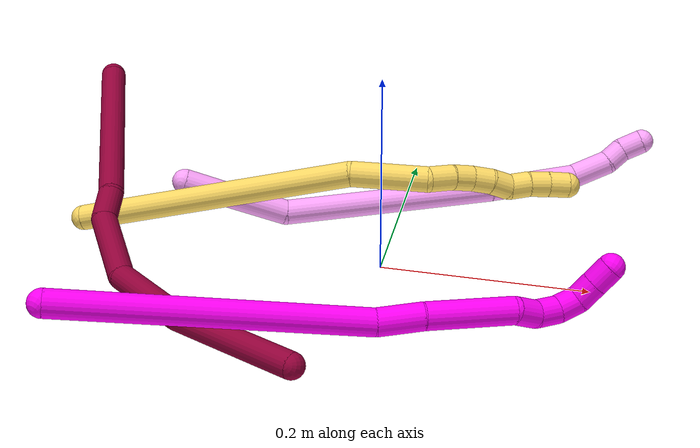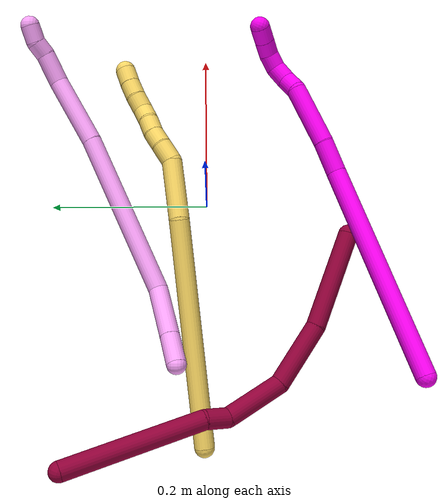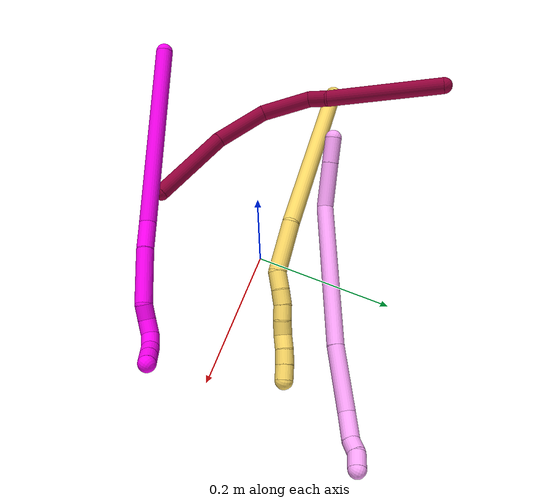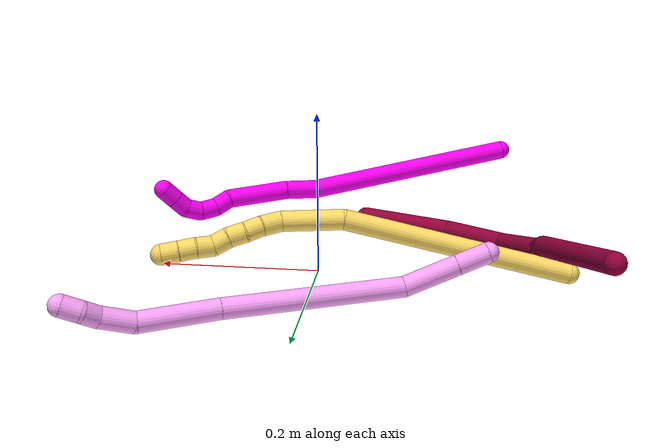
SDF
<sdf version="1.7">
 <world name="default">
  <model name="4">
   <static>0</static>
   <link name="4">
    <collision name="collision-cylinder-e_1_1_4">
     <pose>0.011128 0.014798 0.006122 -1.17851 0.607273 -0.412931</pose>
     <geometry><cylinder><radius>0.0125</radius><length>0.039002</length></cylinder></geometry>
     <surface>
      <friction><ode><mu>1.16</mu><mu2>1.16</mu2><slip1>0</slip1><slip2>0</slip2></ode></friction>
      <contact><ode><kp>1e+06</kp><kd>1</kd><max_vel>0</max_vel><min_depth>0.001</min_depth></ode></contact>
     </surface>
    </collision>
    <visual name="visual-cylinder-e_1_1_4">
     <pose>0.011128 0.014798 0.006122 -1.17851 0.607273 -0.412931</pose>
     <geometry><cylinder><radius>0.0125</radius><length>0.039002</length></cylinder></geometry>
     <material><ambient>1 0.65098 0.996078 1</ambient></material>
    </visual>
    <collision name="collision-cylinder-e_2_4_5">
     <pose>0.041824 0.0552 0.023265 -1.16437 0.612058 -0.410135</pose>
     <geometry><cylinder><radius>0.0125</radius><length>0.068116</length></cylinder></geometry>
     <surface>
      <friction><ode><mu>1.16</mu><mu2>1.16</mu2><slip1>0</slip1><slip2>0</slip2></ode></friction>
      <contact><ode><kp>1e+06</kp><kd>1</kd><max_vel>0</max_vel><min_depth>0.001</min_depth></ode></contact>
     </surface>
    </collision>
    <visual name="visual-cylinder-e_2_4_5">
     <pose>0.041824 0.0552 0.023265 -1.16437 0.612058 -0.410135</pose>
     <geometry><cylinder><radius>0.0125</radius><length>0.068116</length></cylinder></geometry>
     <material><ambient>1 0.65098 0.996078 1</ambient></material>
    </visual>
    <collision name="collision-cylinder-e_3_5_6">
     <pose>0.147588 0.127594 0.079671 -0.80062 0.923307 -0.414991</pose>
     <geometry><cylinder><radius>0.0125</radius><length>0.216139</length></cylinder></geometry>
     <surface>
      <friction><ode><mu>1.16</mu><mu2>1.16</mu2><slip1>0</slip1><slip2>0</slip2></ode></friction>
      <contact><ode><kp>1e+06</kp><kd>1</kd><max_vel>0</max_vel><min_depth>0.001</min_depth></ode></contact>
     </surface>
    </collision>
    <visual name="visual-cylinder-e_3_5_6">
     <pose>0.147588 0.127594 0.079671 -0.80062 0.923307 -0.414991</pose>
     <geometry><cylinder><radius>0.0125</radius><length>0.216139</length></cylinder></geometry>
     <material><ambient>1 0.65098 0.996078 1</ambient></material>
    </visual>
    <collision name="collision-cylinder-e_4_6_7">
     <pose>0.269852 0.193174 0.148321 -0.679424 0.878558 -0.329134</pose>
     <geometry><cylinder><radius>0.0125</radius><length>0.093706</length></cylinder></geometry>
     <surface>
      <friction><ode><mu>1.16</mu><mu2>1.16</mu2><slip1>0</slip1><slip2>0</slip2></ode></friction>
      <contact><ode><kp>1e+06</kp><kd>1</kd><max_vel>0</max_vel><min_depth>0.001</min_depth></ode></contact>
     </surface>
    </collision>
    <visual name="visual-cylinder-e_4_6_7">
     <pose>0.269852 0.193174 0.148321 -0.679424 0.878558 -0.329134</pose>
     <geometry><cylinder><radius>0.0125</radius><length>0.093706</length></cylinder></geometry>
     <material><ambient>1 0.65098 0.996078 1</ambient></material>
    </visual>
    <collision name="collision-cylinder-e_5_7_8">
     <pose>0.324367 0.21501 0.178976 -0.390892 1.16187 -0.258493</pose>
     <geometry><cylinder><radius>0.0125</radius><length>0.040208</length></cylinder></geometry>
     <surface>
      <friction><ode><mu>1.16</mu><mu2>1.16</mu2><slip1>0</slip1><slip2>0</slip2></ode></friction>
      <contact><ode><kp>1e+06</kp><kd>1</kd><max_vel>0</max_vel><min_depth>0.001</min_depth></ode></contact>
     </surface>
    </collision>
    <visual name="visual-cylinder-e_5_7_8">
     <pose>0.324367 0.21501 0.178976 -0.390892 1.16187 -0.258493</pose>
     <geometry><cylinder><radius>0.0125</radius><length>0.040208</length></cylinder></geometry>
     <material><ambient>1 0.65098 0.996078 1</ambient></material>
    </visual>
    <collision name="collision-cylinder-e_6_8_9">
     <pose>0.351664 0.216581 0.190995 0.308488 1.06884 0.18353</pose>
     <geometry><cylinder><radius>0.0125</radius><length>0.020191</length></cylinder></geometry>
     <surface>
      <friction><ode><mu>1.16</mu><mu2>1.16</mu2><slip1>0</slip1><slip2>0</slip2></ode></friction>
      <contact><ode><kp>1e+06</kp><kd>1</kd><max_vel>0</max_vel><min_depth>0.001</min_depth></ode></contact>
     </surface>
    </collision>
    <visual name="visual-cylinder-e_6_8_9">
     <pose>0.351664 0.216581 0.190995 0.308488 1.06884 0.18353</pose>
     <geometry><cylinder><radius>0.0125</radius><length>0.020191</length></cylinder></geometry>
     <material><ambient>1 0.65098 0.996078 1</ambient></material>
    </visual>
    <collision name="collision-cylinder-e_7_9_2">
     <pose>0.371488 0.216324 0.198118 -0.453995 1.323 -0.355836</pose>
     <geometry><cylinder><radius>0.0125</radius><length>0.022639</length></cylinder></geometry>
     <surface>
      <friction><ode><mu>1.16</mu><mu2>1.16</mu2><slip1>0</slip1><slip2>0</slip2></ode></friction>
      <contact><ode><kp>1e+06</kp><kd>1</kd><max_vel>0</max_vel><min_depth>0.001</min_depth></ode></contact>
     </surface>
    </collision>
    <visual name="visual-cylinder-e_7_9_2">
     <pose>0.371488 0.216324 0.198118 -0.453995 1.323 -0.355836</pose>
     <geometry><cylinder><radius>0.0125</radius><length>0.022639</length></cylinder></geometry>
     <material><ambient>1 0.65098 0.996078 1</ambient></material>
    </visual>
    <collision name="collision-sphere-2">
     <pose>0.382461 0.217541 0.200613 0 -0 0</pose>
     <geometry><sphere><radius>0.0125</radius></sphere></geometry>
     <surface>
      <friction><ode><mu>1.16</mu><mu2>1.16</mu2><slip1>0</slip1><slip2>0</slip2></ode></friction>
      <contact><ode><kp>1e+06</kp><kd>1</kd><max_vel>0</max_vel><min_depth>0.001</min_depth></ode></contact>
     </surface>
    </collision>
    <visual name="visual-sphere-2">
     <pose>0.382461 0.217541 0.200613 0 -0 0</pose>
     <geometry><sphere><radius>0.0125</radius></sphere></geometry>
     <material><ambient>1 0.65098 0.996078 1</ambient></material>
    </visual>
    <collision name="collision-sphere-9">
     <pose>0.360514 0.215106 0.195623 0 -0 0</pose>
     <geometry><sphere><radius>0.0125</radius></sphere></geometry>
     <surface>
      <friction><ode><mu>1.16</mu><mu2>1.16</mu2><slip1>0</slip1><slip2>0</slip2></ode></friction>
      <contact><ode><kp>1e+06</kp><kd>1</kd><max_vel>0</max_vel><min_depth>0.001</min_depth></ode></contact>
     </surface>
    </collision>
    <visual name="visual-sphere-9">
     <pose>0.360514 0.215106 0.195623 0 -0 0</pose>
     <geometry><sphere><radius>0.0125</radius></sphere></geometry>
     <material><ambient>1 0.65098 0.996078 1</ambient></material>
    </visual>
    <collision name="collision-sphere-4">
     <pose>0.022256 0.029596 0.012245 0 -0 0</pose>
     <geometry><sphere><radius>0.0125</radius></sphere></geometry>
     <surface>
      <friction><ode><mu>1.16</mu><mu2>1.16</mu2><slip1>0</slip1><slip2>0</slip2></ode></friction>
      <contact><ode><kp>1e+06</kp><kd>1</kd><max_vel>0</max_vel><min_depth>0.001</min_depth></ode></contact>
     </surface>
    </collision>
    <visual name="visual-sphere-4">
     <pose>0.022256 0.029596 0.012245 0 -0 0</pose>
     <geometry><sphere><radius>0.0125</radius></sphere></geometry>
     <material><ambient>1 0.65098 0.996078 1</ambient></material>
    </visual>
    <collision name="collision-sphere-1">
     <geometry><sphere><radius>0.0125</radius></sphere></geometry>
     <surface>
      <friction><ode><mu>1.16</mu><mu2>1.16</mu2><slip1>0</slip1><slip2>0</slip2></ode></friction>
      <contact><ode><kp>1e+06</kp><kd>1</kd><max_vel>0</max_vel><min_depth>0.001</min_depth></ode></contact>
     </surface>
    </collision>
    <visual name="visual-sphere-1">
     <geometry><sphere><radius>0.0125</radius></sphere></geometry>
     <material><ambient>1 0.65098 0.996078 1</ambient></material>
    </visual>
    <collision name="collision-sphere-8">
     <pose>0.342814 0.218056 0.186366 0 -0 0</pose>
     <geometry><sphere><radius>0.0125</radius></sphere></geometry>
     <surface>
      <friction><ode><mu>1.16</mu><mu2>1.16</mu2><slip1>0</slip1><slip2>0</slip2></ode></friction>
      <contact><ode><kp>1e+06</kp><kd>1</kd><max_vel>0</max_vel><min_depth>0.001</min_depth></ode></contact>
     </surface>
    </collision>
    <visual name="visual-sphere-8">
     <pose>0.342814 0.218056 0.186366 0 -0 0</pose>
     <geometry><sphere><radius>0.0125</radius></sphere></geometry>
     <material><ambient>1 0.65098 0.996078 1</ambient></material>
    </visual>
    <collision name="collision-sphere-5">
     <pose>0.061392 0.080805 0.034285 0 -0 0</pose>
     <geometry><sphere><radius>0.0125</radius></sphere></geometry>
     <surface>
      <friction><ode><mu>1.16</mu><mu2>1.16</mu2><slip1>0</slip1><slip2>0</slip2></ode></friction>
      <contact><ode><kp>1e+06</kp><kd>1</kd><max_vel>0</max_vel><min_depth>0.001</min_depth></ode></contact>
     </surface>
    </collision>
    <visual name="visual-sphere-5">
     <pose>0.061392 0.080805 0.034285 0 -0 0</pose>
     <geometry><sphere><radius>0.0125</radius></sphere></geometry>
     <material><ambient>1 0.65098 0.996078 1</ambient></material>
    </visual>
    <collision name="collision-sphere-6">
     <pose>0.233784 0.174384 0.125058 0 -0 0</pose>
     <geometry><sphere><radius>0.0125</radius></sphere></geometry>
     <surface>
      <friction><ode><mu>1.16</mu><mu2>1.16</mu2><slip1>0</slip1><slip2>0</slip2></ode></friction>
      <contact><ode><kp>1e+06</kp><kd>1</kd><max_vel>0</max_vel><min_depth>0.001</min_depth></ode></contact>
     </surface>
    </collision>
    <visual name="visual-sphere-6">
     <pose>0.233784 0.174384 0.125058 0 -0 0</pose>
     <geometry><sphere><radius>0.0125</radius></sphere></geometry>
     <material><ambient>1 0.65098 0.996078 1</ambient></material>
    </visual>
    <collision name="collision-sphere-7">
     <pose>0.305921 0.211964 0.171585 0 -0 0</pose>
     <geometry><sphere><radius>0.0125</radius></sphere></geometry>
     <surface>
      <friction><ode><mu>1.16</mu><mu2>1.16</mu2><slip1>0</slip1><slip2>0</slip2></ode></friction>
      <contact><ode><kp>1e+06</kp><kd>1</kd><max_vel>0</max_vel><min_depth>0.001</min_depth></ode></contact>
     </surface>
    </collision>
    <visual name="visual-sphere-7">
     <pose>0.305921 0.211964 0.171585 0 -0 0</pose>
     <geometry><sphere><radius>0.0125</radius></sphere></geometry>
     <material><ambient>1 0.65098 0.996078 1</ambient></material>
    </visual>
    <inertial>
     <pose>0.178043 0.135864 0.09696 0 -0 0</pose>
     <mass>0.5</mass>
     <inertia>
      <ixx>0.000339</ixx>
      <ixy>0</ixy>
      <ixz>0</ixz>
      <iyy>0.000616</iyy>
      <iyz>0</iyz>
      <izz>-0.001172</izz>
     </inertia>
    </inertial>
   </link>
   <pose>-0.20747 0.037132 0.04996 -1.81628 -0.584325 0.112607</pose>
  </model>
  <model name="5">
   <static>0</static>
   <link name="5">
    <collision name="collision-cylinder-e_1_1_4">
     <pose>0.113338 -0.011047 -0.079983 3.00434 0.951796 2.87644</pose>
     <geometry><cylinder><radius>0.0125</radius><length>0.278315</length></cylinder></geometry>
     <surface>
      <friction><ode><mu>1.16</mu><mu2>1.16</mu2><slip1>0</slip1><slip2>0</slip2></ode></friction>
      <contact><ode><kp>1e+06</kp><kd>1</kd><max_vel>0</max_vel><min_depth>0.001</min_depth></ode></contact>
     </surface>
    </collision>
    <visual name="visual-cylinder-e_1_1_4">
     <pose>0.113338 -0.011047 -0.079983 3.00434 0.951796 2.87644</pose>
     <geometry><cylinder><radius>0.0125</radius><length>0.278315</length></cylinder></geometry>
     <material><ambient>1 0.858824 0.4 1</ambient></material>
    </visual>
    <collision name="collision-cylinder-e_2_4_5">
     <pose>0.250293 -0.023473 -0.18887 3.09396 0.684515 3.00808</pose>
     <geometry><cylinder><radius>0.0125</radius><length>0.074702</length></cylinder></geometry>
     <surface>
      <friction><ode><mu>1.16</mu><mu2>1.16</mu2><slip1>0</slip1><slip2>0</slip2></ode></friction>
      <contact><ode><kp>1e+06</kp><kd>1</kd><max_vel>0</max_vel><min_depth>0.001</min_depth></ode></contact>
     </surface>
    </collision>
    <visual name="visual-cylinder-e_2_4_5">
     <pose>0.250293 -0.023473 -0.18887 3.09396 0.684515 3.00808</pose>
     <geometry><cylinder><radius>0.0125</radius><length>0.074702</length></cylinder></geometry>
     <material><ambient>1 0.858824 0.4 1</ambient></material>
    </visual>
    <collision name="collision-cylinder-e_3_5_6">
     <pose>0.281075 -0.019965 -0.227005 -2.65488 0.601259 -1.79111</pose>
     <geometry><cylinder><radius>0.0125</radius><length>0.025331</length></cylinder></geometry>
     <surface>
      <friction><ode><mu>1.16</mu><mu2>1.16</mu2><slip1>0</slip1><slip2>0</slip2></ode></friction>
      <contact><ode><kp>1e+06</kp><kd>1</kd><max_vel>0</max_vel><min_depth>0.001</min_depth></ode></contact>
     </surface>
    </collision>
    <visual name="visual-cylinder-e_3_5_6">
     <pose>0.281075 -0.019965 -0.227005 -2.65488 0.601259 -1.79111</pose>
     <geometry><cylinder><radius>0.0125</radius><length>0.025331</length></cylinder></geometry>
     <material><ambient>1 0.858824 0.4 1</ambient></material>
    </visual>
    <collision name="collision-cylinder-e_4_6_7">
     <pose>0.292875 -0.011284 -0.244458 -2.70904 0.473101 -1.66342</pose>
     <geometry><cylinder><radius>0.0125</radius><length>0.020347</length></cylinder></geometry>
     <surface>
      <friction><ode><mu>1.16</mu><mu2>1.16</mu2><slip1>0</slip1><slip2>0</slip2></ode></friction>
      <contact><ode><kp>1e+06</kp><kd>1</kd><max_vel>0</max_vel><min_depth>0.001</min_depth></ode></contact>
     </surface>
    </collision>
    <visual name="visual-cylinder-e_4_6_7">
     <pose>0.292875 -0.011284 -0.244458 -2.70904 0.473101 -1.66342</pose>
     <geometry><cylinder><radius>0.0125</radius><length>0.020347</length></cylinder></geometry>
     <material><ambient>1 0.858824 0.4 1</ambient></material>
    </visual>
    <collision name="collision-cylinder-e_5_7_8">
     <pose>0.30219 -0.005329 -0.261482 -2.90103 0.476641 -2.21827</pose>
     <geometry><cylinder><radius>0.0125</radius><length>0.0204</length></cylinder></geometry>
     <surface>
      <friction><ode><mu>1.16</mu><mu2>1.16</mu2><slip1>0</slip1><slip2>0</slip2></ode></friction>
      <contact><ode><kp>1e+06</kp><kd>1</kd><max_vel>0</max_vel><min_depth>0.001</min_depth></ode></contact>
     </surface>
    </collision>
    <visual name="visual-cylinder-e_5_7_8">
     <pose>0.30219 -0.005329 -0.261482 -2.90103 0.476641 -2.21827</pose>
     <geometry><cylinder><radius>0.0125</radius><length>0.0204</length></cylinder></geometry>
     <material><ambient>1 0.858824 0.4 1</ambient></material>
    </visual>
    <collision name="collision-cylinder-e_6_8_9">
     <pose>0.309715 -0.00041 -0.279589 -2.85326 0.285202 -1.55972</pose>
     <geometry><cylinder><radius>0.0125</radius><length>0.020228</length></cylinder></geometry>
     <surface>
      <friction><ode><mu>1.16</mu><mu2>1.16</mu2><slip1>0</slip1><slip2>0</slip2></ode></friction>
      <contact><ode><kp>1e+06</kp><kd>1</kd><max_vel>0</max_vel><min_depth>0.001</min_depth></ode></contact>
     </surface>
    </collision>
    <visual name="visual-cylinder-e_6_8_9">
     <pose>0.309715 -0.00041 -0.279589 -2.85326 0.285202 -1.55972</pose>
     <geometry><cylinder><radius>0.0125</radius><length>0.020228</length></cylinder></geometry>
     <material><ambient>1 0.858824 0.4 1</ambient></material>
    </visual>
    <collision name="collision-cylinder-e_7_9_10">
     <pose>0.319351 0.005513 -0.295912 -2.71818 0.722825 -2.10762</pose>
     <geometry><cylinder><radius>0.0125</radius><length>0.02053</length></cylinder></geometry>
     <surface>
      <friction><ode><mu>1.16</mu><mu2>1.16</mu2><slip1>0</slip1><slip2>0</slip2></ode></friction>
      <contact><ode><kp>1e+06</kp><kd>1</kd><max_vel>0</max_vel><min_depth>0.001</min_depth></ode></contact>
     </surface>
    </collision>
    <visual name="visual-cylinder-e_7_9_10">
     <pose>0.319351 0.005513 -0.295912 -2.71818 0.722825 -2.10762</pose>
     <geometry><cylinder><radius>0.0125</radius><length>0.02053</length></cylinder></geometry>
     <material><ambient>1 0.858824 0.4 1</ambient></material>
    </visual>
    <collision name="collision-cylinder-e_8_10_11">
     <pose>0.3319 0.011081 -0.31076 -2.84358 0.61277 -2.25545</pose>
     <geometry><cylinder><radius>0.0125</radius><length>0.020026</length></cylinder></geometry>
     <surface>
      <friction><ode><mu>1.16</mu><mu2>1.16</mu2><slip1>0</slip1><slip2>0</slip2></ode></friction>
      <contact><ode><kp>1e+06</kp><kd>1</kd><max_vel>0</max_vel><min_depth>0.001</min_depth></ode></contact>
     </surface>
    </collision>
    <visual name="visual-cylinder-e_8_10_11">
     <pose>0.3319 0.011081 -0.31076 -2.84358 0.61277 -2.25545</pose>
     <geometry><cylinder><radius>0.0125</radius><length>0.020026</length></cylinder></geometry>
     <material><ambient>1 0.858824 0.4 1</ambient></material>
    </visual>
    <collision name="collision-cylinder-e_9_11_2">
     <pose>0.343372 0.015235 -0.326685 -2.92884 0.603836 -2.48101</pose>
     <geometry><cylinder><radius>0.0125</radius><length>0.020122</length></cylinder></geometry>
     <surface>
      <friction><ode><mu>1.16</mu><mu2>1.16</mu2><slip1>0</slip1><slip2>0</slip2></ode></friction>
      <contact><ode><kp>1e+06</kp><kd>1</kd><max_vel>0</max_vel><min_depth>0.001</min_depth></ode></contact>
     </surface>
    </collision>
    <visual name="visual-cylinder-e_9_11_2">
     <pose>0.343372 0.015235 -0.326685 -2.92884 0.603836 -2.48101</pose>
     <geometry><cylinder><radius>0.0125</radius><length>0.020122</length></cylinder></geometry>
     <material><ambient>1 0.858824 0.4 1</ambient></material>
    </visual>
    <collision name="collision-sphere-2">
     <pose>0.349084 0.016983 -0.334781 0 -0 0</pose>
     <geometry><sphere><radius>0.0125</radius></sphere></geometry>
     <surface>
      <friction><ode><mu>1.16</mu><mu2>1.16</mu2><slip1>0</slip1><slip2>0</slip2></ode></friction>
      <contact><ode><kp>1e+06</kp><kd>1</kd><max_vel>0</max_vel><min_depth>0.001</min_depth></ode></contact>
     </surface>
    </collision>
    <visual name="visual-sphere-2">
     <pose>0.349084 0.016983 -0.334781 0 -0 0</pose>
     <geometry><sphere><radius>0.0125</radius></sphere></geometry>
     <material><ambient>1 0.858824 0.4 1</ambient></material>
    </visual>
    <collision name="collision-sphere-11">
     <pose>0.337659 0.013486 -0.31859 0 -0 0</pose>
     <geometry><sphere><radius>0.0125</radius></sphere></geometry>
     <surface>
      <friction><ode><mu>1.16</mu><mu2>1.16</mu2><slip1>0</slip1><slip2>0</slip2></ode></friction>
      <contact><ode><kp>1e+06</kp><kd>1</kd><max_vel>0</max_vel><min_depth>0.001</min_depth></ode></contact>
     </surface>
    </collision>
    <visual name="visual-sphere-11">
     <pose>0.337659 0.013486 -0.31859 0 -0 0</pose>
     <geometry><sphere><radius>0.0125</radius></sphere></geometry>
     <material><ambient>1 0.858824 0.4 1</ambient></material>
    </visual>
    <collision name="collision-sphere-10">
     <pose>0.326141 0.008676 -0.30293 0 -0 0</pose>
     <geometry><sphere><radius>0.0125</radius></sphere></geometry>
     <surface>
      <friction><ode><mu>1.16</mu><mu2>1.16</mu2><slip1>0</slip1><slip2>0</slip2></ode></friction>
      <contact><ode><kp>1e+06</kp><kd>1</kd><max_vel>0</max_vel><min_depth>0.001</min_depth></ode></contact>
     </surface>
    </collision>
    <visual name="visual-sphere-10">
     <pose>0.326141 0.008676 -0.30293 0 -0 0</pose>
     <geometry><sphere><radius>0.0125</radius></sphere></geometry>
     <material><ambient>1 0.858824 0.4 1</ambient></material>
    </visual>
    <collision name="collision-sphere-9">
     <pose>0.312561 0.00235 -0.288894 0 -0 0</pose>
     <geometry><sphere><radius>0.0125</radius></sphere></geometry>
     <surface>
      <friction><ode><mu>1.16</mu><mu2>1.16</mu2><slip1>0</slip1><slip2>0</slip2></ode></friction>
      <contact><ode><kp>1e+06</kp><kd>1</kd><max_vel>0</max_vel><min_depth>0.001</min_depth></ode></contact>
     </surface>
    </collision>
    <visual name="visual-sphere-9">
     <pose>0.312561 0.00235 -0.288894 0 -0 0</pose>
     <geometry><sphere><radius>0.0125</radius></sphere></geometry>
     <material><ambient>1 0.858824 0.4 1</ambient></material>
    </visual>
    <collision name="collision-sphere-4">
     <pose>0.226676 -0.022095 -0.159966 0 -0 0</pose>
     <geometry><sphere><radius>0.0125</radius></sphere></geometry>
     <surface>
      <friction><ode><mu>1.16</mu><mu2>1.16</mu2><slip1>0</slip1><slip2>0</slip2></ode></friction>
      <contact><ode><kp>1e+06</kp><kd>1</kd><max_vel>0</max_vel><min_depth>0.001</min_depth></ode></contact>
     </surface>
    </collision>
    <visual name="visual-sphere-4">
     <pose>0.226676 -0.022095 -0.159966 0 -0 0</pose>
     <geometry><sphere><radius>0.0125</radius></sphere></geometry>
     <material><ambient>1 0.858824 0.4 1</ambient></material>
    </visual>
    <collision name="collision-sphere-1">
     <geometry><sphere><radius>0.0125</radius></sphere></geometry>
     <surface>
      <friction><ode><mu>1.16</mu><mu2>1.16</mu2><slip1>0</slip1><slip2>0</slip2></ode></friction>
      <contact><ode><kp>1e+06</kp><kd>1</kd><max_vel>0</max_vel><min_depth>0.001</min_depth></ode></contact>
     </surface>
    </collision>
    <visual name="visual-sphere-1">
     <geometry><sphere><radius>0.0125</radius></sphere></geometry>
     <material><ambient>1 0.858824 0.4 1</ambient></material>
    </visual>
    <collision name="collision-sphere-8">
     <pose>0.30687 -0.00317 -0.270284 0 -0 0</pose>
     <geometry><sphere><radius>0.0125</radius></sphere></geometry>
     <surface>
      <friction><ode><mu>1.16</mu><mu2>1.16</mu2><slip1>0</slip1><slip2>0</slip2></ode></friction>
      <contact><ode><kp>1e+06</kp><kd>1</kd><max_vel>0</max_vel><min_depth>0.001</min_depth></ode></contact>
     </surface>
    </collision>
    <visual name="visual-sphere-8">
     <pose>0.30687 -0.00317 -0.270284 0 -0 0</pose>
     <geometry><sphere><radius>0.0125</radius></sphere></geometry>
     <material><ambient>1 0.858824 0.4 1</ambient></material>
    </visual>
    <collision name="collision-sphere-5">
     <pose>0.27391 -0.02485 -0.217774 0 -0 0</pose>
     <geometry><sphere><radius>0.0125</radius></sphere></geometry>
     <surface>
      <friction><ode><mu>1.16</mu><mu2>1.16</mu2><slip1>0</slip1><slip2>0</slip2></ode></friction>
      <contact><ode><kp>1e+06</kp><kd>1</kd><max_vel>0</max_vel><min_depth>0.001</min_depth></ode></contact>
     </surface>
    </collision>
    <visual name="visual-sphere-5">
     <pose>0.27391 -0.02485 -0.217774 0 -0 0</pose>
     <geometry><sphere><radius>0.0125</radius></sphere></geometry>
     <material><ambient>1 0.858824 0.4 1</ambient></material>
    </visual>
    <collision name="collision-sphere-6">
     <pose>0.288239 -0.01508 -0.236236 0 -0 0</pose>
     <geometry><sphere><radius>0.0125</radius></sphere></geometry>
     <surface>
      <friction><ode><mu>1.16</mu><mu2>1.16</mu2><slip1>0</slip1><slip2>0</slip2></ode></friction>
      <contact><ode><kp>1e+06</kp><kd>1</kd><max_vel>0</max_vel><min_depth>0.001</min_depth></ode></contact>
     </surface>
    </collision>
    <visual name="visual-sphere-6">
     <pose>0.288239 -0.01508 -0.236236 0 -0 0</pose>
     <geometry><sphere><radius>0.0125</radius></sphere></geometry>
     <material><ambient>1 0.858824 0.4 1</ambient></material>
    </visual>
    <collision name="collision-sphere-7">
     <pose>0.29751 -0.007488 -0.25268 0 -0 0</pose>
     <geometry><sphere><radius>0.0125</radius></sphere></geometry>
     <surface>
      <friction><ode><mu>1.16</mu><mu2>1.16</mu2><slip1>0</slip1><slip2>0</slip2></ode></friction>
      <contact><ode><kp>1e+06</kp><kd>1</kd><max_vel>0</max_vel><min_depth>0.001</min_depth></ode></contact>
     </surface>
    </collision>
    <visual name="visual-sphere-7">
     <pose>0.29751 -0.007488 -0.25268 0 -0 0</pose>
     <geometry><sphere><radius>0.0125</radius></sphere></geometry>
     <material><ambient>1 0.858824 0.4 1</ambient></material>
    </visual>
    <inertial>
     <pose>0.191723 -0.010078 -0.15391 0 -0 0</pose>
     <mass>0.5</mass>
     <inertia>
      <ixx>-0.000747</ixx>
      <ixy>0</ixy>
      <ixz>0</ixz>
      <iyy>0.002096</iyy>
      <iyz>0</iyz>
      <izz>-0.001386</izz>
     </inertia>
    </inertial>
   </link>
   <pose>-0.305313 0.004374 0.014596 -0.160852 -0.844398 0.281311</pose>
  </model>
  <model name="8">
   <static>0</static>
   <link name="8">
    <collision name="collision-cylinder-e_1_1_4">
     <pose>0.034028 -0.072533 0.03961 1.07096 0.39059 0.23366</pose>
     <geometry><cylinder><radius>0.0125</radius><length>0.17875</length></cylinder></geometry>
     <surface>
      <friction><ode><mu>1.16</mu><mu2>1.16</mu2><slip1>0</slip1><slip2>0</slip2></ode></friction>
      <contact><ode><kp>1e+06</kp><kd>1</kd><max_vel>0</max_vel><min_depth>0.001</min_depth></ode></contact>
     </surface>
    </collision>
    <visual name="visual-cylinder-e_1_1_4">
     <pose>0.034028 -0.072533 0.03961 1.07096 0.39059 0.23366</pose>
     <geometry><cylinder><radius>0.0125</radius><length>0.17875</length></cylinder></geometry>
     <material><ambient>0.584314 0 0.227451 1</ambient></material>
    </visual>
    <collision name="collision-cylinder-e_2_4_5">
     <pose>0.069528 -0.159246 0.085577 1.14934 0.094449 0.061189</pose>
     <geometry><cylinder><radius>0.0125</radius><length>0.031218</length></cylinder></geometry>
     <surface>
      <friction><ode><mu>1.16</mu><mu2>1.16</mu2><slip1>0</slip1><slip2>0</slip2></ode></friction>
      <contact><ode><kp>1e+06</kp><kd>1</kd><max_vel>0</max_vel><min_depth>0.001</min_depth></ode></contact>
     </surface>
    </collision>
    <visual name="visual-cylinder-e_2_4_5">
     <pose>0.069528 -0.159246 0.085577 1.14934 0.094449 0.061189</pose>
     <geometry><cylinder><radius>0.0125</radius><length>0.031218</length></cylinder></geometry>
     <material><ambient>0.584314 0 0.227451 1</ambient></material>
    </visual>
    <collision name="collision-cylinder-e_3_5_6">
     <pose>0.093059 -0.203486 0.104442 1.17648 0.595472 0.403779</pose>
     <geometry><cylinder><radius>0.0125</radius><length>0.078656</length></cylinder></geometry>
     <surface>
      <friction><ode><mu>1.16</mu><mu2>1.16</mu2><slip1>0</slip1><slip2>0</slip2></ode></friction>
      <contact><ode><kp>1e+06</kp><kd>1</kd><max_vel>0</max_vel><min_depth>0.001</min_depth></ode></contact>
     </surface>
    </collision>
    <visual name="visual-cylinder-e_3_5_6">
     <pose>0.093059 -0.203486 0.104442 1.17648 0.595472 0.403779</pose>
     <geometry><cylinder><radius>0.0125</radius><length>0.078656</length></cylinder></geometry>
     <material><ambient>0.584314 0 0.227451 1</ambient></material>
    </visual>
    <collision name="collision-cylinder-e_4_6_7">
     <pose>0.152072 -0.253836 0.122565 1.30081 1.05297 0.832706</pose>
     <geometry><cylinder><radius>0.0125</radius><length>0.085059</length></cylinder></geometry>
     <surface>
      <friction><ode><mu>1.16</mu><mu2>1.16</mu2><slip1>0</slip1><slip2>0</slip2></ode></friction>
      <contact><ode><kp>1e+06</kp><kd>1</kd><max_vel>0</max_vel><min_depth>0.001</min_depth></ode></contact>
     </surface>
    </collision>
    <visual name="visual-cylinder-e_4_6_7">
     <pose>0.152072 -0.253836 0.122565 1.30081 1.05297 0.832706</pose>
     <geometry><cylinder><radius>0.0125</radius><length>0.085059</length></cylinder></geometry>
     <material><ambient>0.584314 0 0.227451 1</ambient></material>
    </visual>
    <collision name="collision-cylinder-e_5_7_2">
     <pose>0.248186 -0.296121 0.12589 1.67452 1.21307 1.31203</pose>
     <geometry><cylinder><radius>0.0125</radius><length>0.126317</length></cylinder></geometry>
     <surface>
      <friction><ode><mu>1.16</mu><mu2>1.16</mu2><slip1>0</slip1><slip2>0</slip2></ode></friction>
      <contact><ode><kp>1e+06</kp><kd>1</kd><max_vel>0</max_vel><min_depth>0.001</min_depth></ode></contact>
     </surface>
    </collision>
    <visual name="visual-cylinder-e_5_7_2">
     <pose>0.248186 -0.296121 0.12589 1.67452 1.21307 1.31203</pose>
     <geometry><cylinder><radius>0.0125</radius><length>0.126317</length></cylinder></geometry>
     <material><ambient>0.584314 0 0.227451 1</ambient></material>
    </visual>
    <collision name="collision-sphere-2">
     <pose>0.307346 -0.318117 0.123601 0 -0 0</pose>
     <geometry><sphere><radius>0.0125</radius></sphere></geometry>
     <surface>
      <friction><ode><mu>1.16</mu><mu2>1.16</mu2><slip1>0</slip1><slip2>0</slip2></ode></friction>
      <contact><ode><kp>1e+06</kp><kd>1</kd><max_vel>0</max_vel><min_depth>0.001</min_depth></ode></contact>
     </surface>
    </collision>
    <visual name="visual-sphere-2">
     <pose>0.307346 -0.318117 0.123601 0 -0 0</pose>
     <geometry><sphere><radius>0.0125</radius></sphere></geometry>
     <material><ambient>0.584314 0 0.227451 1</ambient></material>
    </visual>
    <collision name="collision-sphere-7">
     <pose>0.189026 -0.274125 0.12818 0 -0 0</pose>
     <geometry><sphere><radius>0.0125</radius></sphere></geometry>
     <surface>
      <friction><ode><mu>1.16</mu><mu2>1.16</mu2><slip1>0</slip1><slip2>0</slip2></ode></friction>
      <contact><ode><kp>1e+06</kp><kd>1</kd><max_vel>0</max_vel><min_depth>0.001</min_depth></ode></contact>
     </surface>
    </collision>
    <visual name="visual-sphere-7">
     <pose>0.189026 -0.274125 0.12818 0 -0 0</pose>
     <geometry><sphere><radius>0.0125</radius></sphere></geometry>
     <material><ambient>0.584314 0 0.227451 1</ambient></material>
    </visual>
    <collision name="collision-sphere-6">
     <pose>0.115118 -0.233546 0.11695 0 -0 0</pose>
     <geometry><sphere><radius>0.0125</radius></sphere></geometry>
     <surface>
      <friction><ode><mu>1.16</mu><mu2>1.16</mu2><slip1>0</slip1><slip2>0</slip2></ode></friction>
      <contact><ode><kp>1e+06</kp><kd>1</kd><max_vel>0</max_vel><min_depth>0.001</min_depth></ode></contact>
     </surface>
    </collision>
    <visual name="visual-sphere-6">
     <pose>0.115118 -0.233546 0.11695 0 -0 0</pose>
     <geometry><sphere><radius>0.0125</radius></sphere></geometry>
     <material><ambient>0.584314 0 0.227451 1</ambient></material>
    </visual>
    <collision name="collision-sphere-5">
     <pose>0.071 -0.173426 0.091934 0 -0 0</pose>
     <geometry><sphere><radius>0.0125</radius></sphere></geometry>
     <surface>
      <friction><ode><mu>1.16</mu><mu2>1.16</mu2><slip1>0</slip1><slip2>0</slip2></ode></friction>
      <contact><ode><kp>1e+06</kp><kd>1</kd><max_vel>0</max_vel><min_depth>0.001</min_depth></ode></contact>
     </surface>
    </collision>
    <visual name="visual-sphere-5">
     <pose>0.071 -0.173426 0.091934 0 -0 0</pose>
     <geometry><sphere><radius>0.0125</radius></sphere></geometry>
     <material><ambient>0.584314 0 0.227451 1</ambient></material>
    </visual>
    <collision name="collision-sphere-1">
     <geometry><sphere><radius>0.0125</radius></sphere></geometry>
     <surface>
      <friction><ode><mu>1.16</mu><mu2>1.16</mu2><slip1>0</slip1><slip2>0</slip2></ode></friction>
      <contact><ode><kp>1e+06</kp><kd>1</kd><max_vel>0</max_vel><min_depth>0.001</min_depth></ode></contact>
     </surface>
    </collision>
    <visual name="visual-sphere-1">
     <geometry><sphere><radius>0.0125</radius></sphere></geometry>
     <material><ambient>0.584314 0 0.227451 1</ambient></material>
    </visual>
    <collision name="collision-sphere-4">
     <pose>0.068056 -0.145066 0.07922 0 -0 0</pose>
     <geometry><sphere><radius>0.0125</radius></sphere></geometry>
     <surface>
      <friction><ode><mu>1.16</mu><mu2>1.16</mu2><slip1>0</slip1><slip2>0</slip2></ode></friction>
      <contact><ode><kp>1e+06</kp><kd>1</kd><max_vel>0</max_vel><min_depth>0.001</min_depth></ode></contact>
     </surface>
    </collision>
    <visual name="visual-sphere-4">
     <pose>0.068056 -0.145066 0.07922 0 -0 0</pose>
     <geometry><sphere><radius>0.0125</radius></sphere></geometry>
     <material><ambient>0.584314 0 0.227451 1</ambient></material>
    </visual>
    <inertial>
     <pose>0.119716 -0.185876 0.088588 0 -0 0</pose>
     <mass>0.5</mass>
     <inertia>
      <ixx>0.000725</ixx>
      <ixy>0</ixy>
      <ixz>0</ixz>
      <iyy>0.000655</iyy>
      <iyz>0</iyz>
      <izz>0.000107</izz>
     </inertia>
    </inertial>
   </link>
   <pose>-0.328832 0.167021 0.094682 0.938494 -0.303864 -0.189564</pose>
  </model>
  <model name="10">
   <static>0</static>
   <link name="10">
    <collision name="collision-cylinder-e_1_1_4">
     <pose>0.106639 0.042695 0.074054 -0.522995 0.895092 -0.255538</pose>
     <geometry><cylinder><radius>0.0125</radius><length>0.27334</length></cylinder></geometry>
     <surface>
      <friction><ode><mu>1.16</mu><mu2>1.16</mu2><slip1>0</slip1><slip2>0</slip2></ode></friction>
      <contact><ode><kp>1e+06</kp><kd>1</kd><max_vel>0</max_vel><min_depth>0.001</min_depth></ode></contact>
     </surface>
    </collision>
    <visual name="visual-cylinder-e_1_1_4">
     <pose>0.106639 0.042695 0.074054 -0.522995 0.895092 -0.255538</pose>
     <geometry><cylinder><radius>0.0125</radius><length>0.27334</length></cylinder></geometry>
     <material><ambient>1 0 0.964706 1</ambient></material>
    </visual>
    <collision name="collision-cylinder-e_2_4_5">
     <pose>0.2292 0.088132 0.161172 -0.206846 0.873058 -0.096773</pose>
     <geometry><cylinder><radius>0.0125</radius><length>0.041556</length></cylinder></geometry>
     <surface>
      <friction><ode><mu>1.16</mu><mu2>1.16</mu2><slip1>0</slip1><slip2>0</slip2></ode></friction>
      <contact><ode><kp>1e+06</kp><kd>1</kd><max_vel>0</max_vel><min_depth>0.001</min_depth></ode></contact>
     </surface>
    </collision>
    <visual name="visual-cylinder-e_2_4_5">
     <pose>0.2292 0.088132 0.161172 -0.206846 0.873058 -0.096773</pose>
     <geometry><cylinder><radius>0.0125</radius><length>0.041556</length></cylinder></geometry>
     <material><ambient>1 0 0.964706 1</ambient></material>
    </visual>
    <collision name="collision-cylinder-e_3_5_6">
     <pose>0.274361 0.100754 0.199419 -0.373908 0.824252 -0.165014</pose>
     <geometry><cylinder><radius>0.0125</radius><length>0.079666</length></cylinder></geometry>
     <surface>
      <friction><ode><mu>1.16</mu><mu2>1.16</mu2><slip1>0</slip1><slip2>0</slip2></ode></friction>
      <contact><ode><kp>1e+06</kp><kd>1</kd><max_vel>0</max_vel><min_depth>0.001</min_depth></ode></contact>
     </surface>
    </collision>
    <visual name="visual-cylinder-e_3_5_6">
     <pose>0.274361 0.100754 0.199419 -0.373908 0.824252 -0.165014</pose>
     <geometry><cylinder><radius>0.0125</radius><length>0.079666</length></cylinder></geometry>
     <material><ambient>1 0 0.964706 1</ambient></material>
    </visual>
    <collision name="collision-cylinder-e_4_6_7">
     <pose>0.309717 0.117362 0.231169 -0.797296 0.576792 -0.248624</pose>
     <geometry><cylinder><radius>0.0125</radius><length>0.022435</length></cylinder></geometry>
     <surface>
      <friction><ode><mu>1.16</mu><mu2>1.16</mu2><slip1>0</slip1><slip2>0</slip2></ode></friction>
      <contact><ode><kp>1e+06</kp><kd>1</kd><max_vel>0</max_vel><min_depth>0.001</min_depth></ode></contact>
     </surface>
    </collision>
    <visual name="visual-cylinder-e_4_6_7">
     <pose>0.309717 0.117362 0.231169 -0.797296 0.576792 -0.248624</pose>
     <geometry><cylinder><radius>0.0125</radius><length>0.022435</length></cylinder></geometry>
     <material><ambient>1 0 0.964706 1</ambient></material>
    </visual>
    <collision name="collision-cylinder-e_5_7_8">
     <pose>0.322066 0.127489 0.246427 -0.372932 0.588865 -0.114295</pose>
     <geometry><cylinder><radius>0.0125</radius><length>0.022438</length></cylinder></geometry>
     <surface>
      <friction><ode><mu>1.16</mu><mu2>1.16</mu2><slip1>0</slip1><slip2>0</slip2></ode></friction>
      <contact><ode><kp>1e+06</kp><kd>1</kd><max_vel>0</max_vel><min_depth>0.001</min_depth></ode></contact>
     </surface>
    </collision>
    <visual name="visual-cylinder-e_5_7_8">
     <pose>0.322066 0.127489 0.246427 -0.372932 0.588865 -0.114295</pose>
     <geometry><cylinder><radius>0.0125</radius><length>0.022438</length></cylinder></geometry>
     <material><ambient>1 0 0.964706 1</ambient></material>
    </visual>
    <collision name="collision-cylinder-e_6_8_9">
     <pose>0.33469 0.129472 0.262944 0.17892 0.676877 0.063124</pose>
     <geometry><cylinder><radius>0.0125</radius><length>0.020412</length></cylinder></geometry>
     <surface>
      <friction><ode><mu>1.16</mu><mu2>1.16</mu2><slip1>0</slip1><slip2>0</slip2></ode></friction>
      <contact><ode><kp>1e+06</kp><kd>1</kd><max_vel>0</max_vel><min_depth>0.001</min_depth></ode></contact>
     </surface>
    </collision>
    <visual name="visual-cylinder-e_6_8_9">
     <pose>0.33469 0.129472 0.262944 0.17892 0.676877 0.063124</pose>
     <geometry><cylinder><radius>0.0125</radius><length>0.020412</length></cylinder></geometry>
     <material><ambient>1 0 0.964706 1</ambient></material>
    </visual>
    <collision name="collision-cylinder-e_7_9_10">
     <pose>0.346021 0.122437 0.277474 0.697759 0.514064 0.190646</pose>
     <geometry><cylinder><radius>0.0125</radius><length>0.020087</length></cylinder></geometry>
     <surface>
      <friction><ode><mu>1.16</mu><mu2>1.16</mu2><slip1>0</slip1><slip2>0</slip2></ode></friction>
      <contact><ode><kp>1e+06</kp><kd>1</kd><max_vel>0</max_vel><min_depth>0.001</min_depth></ode></contact>
     </surface>
    </collision>
    <visual name="visual-cylinder-e_7_9_10">
     <pose>0.346021 0.122437 0.277474 0.697759 0.514064 0.190646</pose>
     <geometry><cylinder><radius>0.0125</radius><length>0.020087</length></cylinder></geometry>
     <material><ambient>1 0 0.964706 1</ambient></material>
    </visual>
    <collision name="collision-cylinder-e_8_10_2">
     <pose>0.35589 0.111204 0.290872 0.697774 0.513734 0.190523</pose>
     <geometry><cylinder><radius>0.0125</radius><length>0.020066</length></cylinder></geometry>
     <surface>
      <friction><ode><mu>1.16</mu><mu2>1.16</mu2><slip1>0</slip1><slip2>0</slip2></ode></friction>
      <contact><ode><kp>1e+06</kp><kd>1</kd><max_vel>0</max_vel><min_depth>0.001</min_depth></ode></contact>
     </surface>
    </collision>
    <visual name="visual-cylinder-e_8_10_2">
     <pose>0.35589 0.111204 0.290872 0.697774 0.513734 0.190523</pose>
     <geometry><cylinder><radius>0.0125</radius><length>0.020066</length></cylinder></geometry>
     <material><ambient>1 0 0.964706 1</ambient></material>
    </visual>
    <collision name="collision-sphere-2">
     <pose>0.360821 0.10559 0.297567 0 -0 0</pose>
     <geometry><sphere><radius>0.0125</radius></sphere></geometry>
     <surface>
      <friction><ode><mu>1.16</mu><mu2>1.16</mu2><slip1>0</slip1><slip2>0</slip2></ode></friction>
      <contact><ode><kp>1e+06</kp><kd>1</kd><max_vel>0</max_vel><min_depth>0.001</min_depth></ode></contact>
     </surface>
    </collision>
    <visual name="visual-sphere-2">
     <pose>0.360821 0.10559 0.297567 0 -0 0</pose>
     <geometry><sphere><radius>0.0125</radius></sphere></geometry>
     <material><ambient>1 0 0.964706 1</ambient></material>
    </visual>
    <collision name="collision-sphere-10">
     <pose>0.35096 0.116818 0.284176 0 -0 0</pose>
     <geometry><sphere><radius>0.0125</radius></sphere></geometry>
     <surface>
      <friction><ode><mu>1.16</mu><mu2>1.16</mu2><slip1>0</slip1><slip2>0</slip2></ode></friction>
      <contact><ode><kp>1e+06</kp><kd>1</kd><max_vel>0</max_vel><min_depth>0.001</min_depth></ode></contact>
     </surface>
    </collision>
    <visual name="visual-sphere-10">
     <pose>0.35096 0.116818 0.284176 0 -0 0</pose>
     <geometry><sphere><radius>0.0125</radius></sphere></geometry>
     <material><ambient>1 0 0.964706 1</ambient></material>
    </visual>
    <collision name="collision-sphere-9">
     <pose>0.341083 0.128056 0.270773 0 -0 0</pose>
     <geometry><sphere><radius>0.0125</radius></sphere></geometry>
     <surface>
      <friction><ode><mu>1.16</mu><mu2>1.16</mu2><slip1>0</slip1><slip2>0</slip2></ode></friction>
      <contact><ode><kp>1e+06</kp><kd>1</kd><max_vel>0</max_vel><min_depth>0.001</min_depth></ode></contact>
     </surface>
    </collision>
    <visual name="visual-sphere-9">
     <pose>0.341083 0.128056 0.270773 0 -0 0</pose>
     <geometry><sphere><radius>0.0125</radius></sphere></geometry>
     <material><ambient>1 0 0.964706 1</ambient></material>
    </visual>
    <collision name="collision-sphere-4">
     <pose>0.213278 0.08539 0.148107 0 -0 0</pose>
     <geometry><sphere><radius>0.0125</radius></sphere></geometry>
     <surface>
      <friction><ode><mu>1.16</mu><mu2>1.16</mu2><slip1>0</slip1><slip2>0</slip2></ode></friction>
      <contact><ode><kp>1e+06</kp><kd>1</kd><max_vel>0</max_vel><min_depth>0.001</min_depth></ode></contact>
     </surface>
    </collision>
    <visual name="visual-sphere-4">
     <pose>0.213278 0.08539 0.148107 0 -0 0</pose>
     <geometry><sphere><radius>0.0125</radius></sphere></geometry>
     <material><ambient>1 0 0.964706 1</ambient></material>
    </visual>
    <collision name="collision-sphere-1">
     <geometry><sphere><radius>0.0125</radius></sphere></geometry>
     <surface>
      <friction><ode><mu>1.16</mu><mu2>1.16</mu2><slip1>0</slip1><slip2>0</slip2></ode></friction>
      <contact><ode><kp>1e+06</kp><kd>1</kd><max_vel>0</max_vel><min_depth>0.001</min_depth></ode></contact>
     </surface>
    </collision>
    <visual name="visual-sphere-1">
     <geometry><sphere><radius>0.0125</radius></sphere></geometry>
     <material><ambient>1 0 0.964706 1</ambient></material>
    </visual>
    <collision name="collision-sphere-8">
     <pose>0.328297 0.130888 0.255115 0 -0 0</pose>
     <geometry><sphere><radius>0.0125</radius></sphere></geometry>
     <surface>
      <friction><ode><mu>1.16</mu><mu2>1.16</mu2><slip1>0</slip1><slip2>0</slip2></ode></friction>
      <contact><ode><kp>1e+06</kp><kd>1</kd><max_vel>0</max_vel><min_depth>0.001</min_depth></ode></contact>
     </surface>
    </collision>
    <visual name="visual-sphere-8">
     <pose>0.328297 0.130888 0.255115 0 -0 0</pose>
     <geometry><sphere><radius>0.0125</radius></sphere></geometry>
     <material><ambient>1 0 0.964706 1</ambient></material>
    </visual>
    <collision name="collision-sphere-5">
     <pose>0.245122 0.090874 0.174237 0 -0 0</pose>
     <geometry><sphere><radius>0.0125</radius></sphere></geometry>
     <surface>
      <friction><ode><mu>1.16</mu><mu2>1.16</mu2><slip1>0</slip1><slip2>0</slip2></ode></friction>
      <contact><ode><kp>1e+06</kp><kd>1</kd><max_vel>0</max_vel><min_depth>0.001</min_depth></ode></contact>
     </surface>
    </collision>
    <visual name="visual-sphere-5">
     <pose>0.245122 0.090874 0.174237 0 -0 0</pose>
     <geometry><sphere><radius>0.0125</radius></sphere></geometry>
     <material><ambient>1 0 0.964706 1</ambient></material>
    </visual>
    <collision name="collision-sphere-6">
     <pose>0.3036 0.110635 0.2246 0 -0 0</pose>
     <geometry><sphere><radius>0.0125</radius></sphere></geometry>
     <surface>
      <friction><ode><mu>1.16</mu><mu2>1.16</mu2><slip1>0</slip1><slip2>0</slip2></ode></friction>
      <contact><ode><kp>1e+06</kp><kd>1</kd><max_vel>0</max_vel><min_depth>0.001</min_depth></ode></contact>
     </surface>
    </collision>
    <visual name="visual-sphere-6">
     <pose>0.3036 0.110635 0.2246 0 -0 0</pose>
     <geometry><sphere><radius>0.0125</radius></sphere></geometry>
     <material><ambient>1 0 0.964706 1</ambient></material>
    </visual>
    <collision name="collision-sphere-7">
     <pose>0.315835 0.124089 0.237739 0 -0 0</pose>
     <geometry><sphere><radius>0.0125</radius></sphere></geometry>
     <surface>
      <friction><ode><mu>1.16</mu><mu2>1.16</mu2><slip1>0</slip1><slip2>0</slip2></ode></friction>
      <contact><ode><kp>1e+06</kp><kd>1</kd><max_vel>0</max_vel><min_depth>0.001</min_depth></ode></contact>
     </surface>
    </collision>
    <visual name="visual-sphere-7">
     <pose>0.315835 0.124089 0.237739 0 -0 0</pose>
     <geometry><sphere><radius>0.0125</radius></sphere></geometry>
     <material><ambient>1 0 0.964706 1</ambient></material>
    </visual>
    <inertial>
     <pose>0.191258 0.072373 0.140639 0 -0 0</pose>
     <mass>0.5</mass>
     <inertia>
      <ixx>0.00083</ixx>
      <ixy>0</ixy>
      <ixz>0</ixz>
      <iyy>0.001394</iyy>
      <iyz>0</iyz>
      <izz>-0.001903</izz>
     </inertia>
    </inertial>
   </link>
   <pose>-0.227281 -0.250182 0.096638 -1.29625 -0.001381 -0.332122</pose>
  </model>
 </world>
</sdf>
